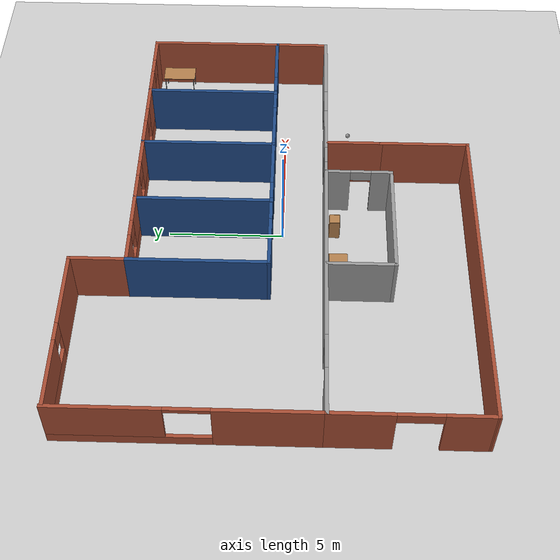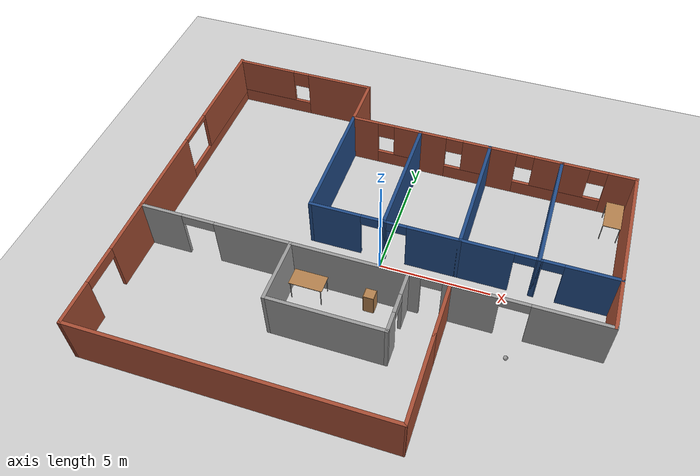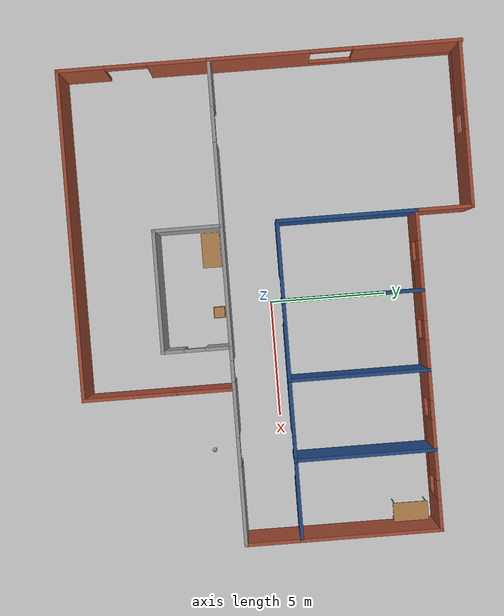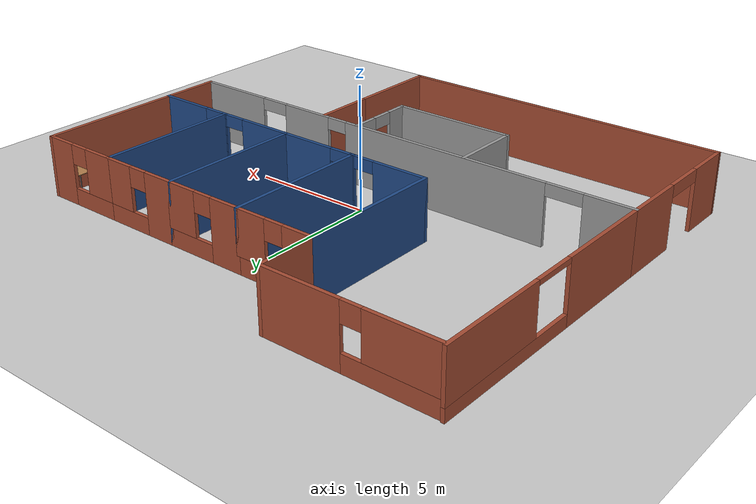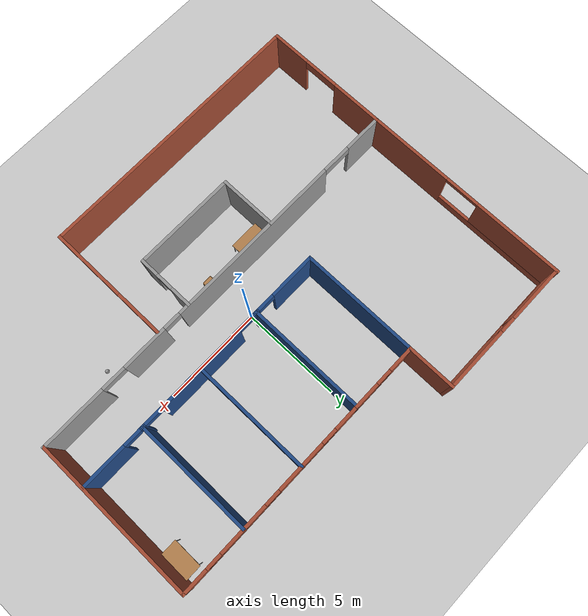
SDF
<sdf version="1.7">
 <world name="default">
  <model name="ground_plane">
   <static>1</static>
   <link name="link">
    <collision name="collision">
     <geometry><plane><normal>0 0 1</normal><size>100 100</size></plane></geometry>
     <surface>
      <contact><collide_bitmask>65535</collide_bitmask></contact>
      <friction><ode><mu>100</mu><mu2>50</mu2></ode></friction>
     </surface>
    </collision>
    <visual name="visual">
     <cast_shadows>0</cast_shadows>
     <geometry><plane><normal>0 0 1</normal><size>100 100</size></plane></geometry>
     <material>
      <script><uri>file://media/materials/scripts/gazebo.material</uri><name>Gazebo/Grey</name></script>
     </material>
    </visual>
   </link>
  </model>
  <model name="Building">
   <pose>-0.15134 0.280793 0 0 -0 0</pose>
   <link name="Wall_10">
    <pose>8.50013 0.225124 0 0 -0 0</pose>
    <visual name="Wall_10_Visual_0">
     <pose>-1.64755 0 1.25 0 -0 0</pose>
     <geometry><box><size>0.204911 0.15 2.5</size></box></geometry>
     <material>
      <script><uri>file://media/materials/scripts/gazebo.material</uri><name>Gazebo/Grey</name></script>
      <ambient>0.12549 0.290196 0.529412 1</ambient>
     </material>
     <meta><layer>0</layer></meta>
    </visual>
    <collision name="Wall_10_Collision_0">
     <geometry><box><size>0.204911 0.15 2.5</size></box></geometry>
     <pose>-1.64755 0 1.25 0 -0 0</pose>
    </collision>
    <visual name="Wall_10_Visual_1">
     <pose>0.552455 0 1.25 0 -0 0</pose>
     <geometry><box><size>2.39509 0.15 2.5</size></box></geometry>
     <material>
      <script><uri>file://media/materials/scripts/gazebo.material</uri><name>Gazebo/Grey</name></script>
      <ambient>0.12549 0.290196 0.529412 1</ambient>
     </material>
     <meta><layer>0</layer></meta>
    </visual>
    <collision name="Wall_10_Collision_1">
     <geometry><box><size>2.39509 0.15 2.5</size></box></geometry>
     <pose>0.552455 0 1.25 0 -0 0</pose>
    </collision>
    <visual name="Wall_10_Visual_2">
     <pose>-1.09509 0 2.25 0 -0 0</pose>
     <geometry><box><size>0.9 0.15 0.5</size></box></geometry>
     <material>
      <script><uri>file://media/materials/scripts/gazebo.material</uri><name>Gazebo/Grey</name></script>
      <ambient>0.12549 0.290196 0.529412 1</ambient>
     </material>
     <meta><layer>0</layer></meta>
    </visual>
    <collision name="Wall_10_Collision_2">
     <geometry><box><size>0.9 0.15 0.5</size></box></geometry>
     <pose>-1.09509 0 2.25 0 -0 0</pose>
    </collision>
   </link>
   <link name="Wall_12">
    <pose>5.15013 0.225124 0 0 -0 3.14159</pose>
    <visual name="Wall_12_Visual_0">
     <pose>-1.64576 0 1.25 0 -0 0</pose>
     <geometry><box><size>0.208483 0.15 2.5</size></box></geometry>
     <material>
      <script><uri>file://media/materials/scripts/gazebo.material</uri><name>Gazebo/Grey</name></script>
      <ambient>0.12549 0.290196 0.529412 1</ambient>
     </material>
     <meta><layer>0</layer></meta>
    </visual>
    <collision name="Wall_12_Collision_0">
     <geometry><box><size>0.208483 0.15 2.5</size></box></geometry>
     <pose>-1.64576 0 1.25 0 -0 0</pose>
    </collision>
    <visual name="Wall_12_Visual_1">
     <pose>0.554241 0 1.25 0 -0 0</pose>
     <geometry><box><size>2.39152 0.15 2.5</size></box></geometry>
     <material>
      <script><uri>file://media/materials/scripts/gazebo.material</uri><name>Gazebo/Grey</name></script>
      <ambient>0.12549 0.290196 0.529412 1</ambient>
     </material>
     <meta><layer>0</layer></meta>
    </visual>
    <collision name="Wall_12_Collision_1">
     <geometry><box><size>2.39152 0.15 2.5</size></box></geometry>
     <pose>0.554241 0 1.25 0 -0 0</pose>
    </collision>
    <visual name="Wall_12_Visual_2">
     <pose>-1.09152 0 2.25 0 -0 0</pose>
     <geometry><box><size>0.9 0.15 0.5</size></box></geometry>
     <material>
      <script><uri>file://media/materials/scripts/gazebo.material</uri><name>Gazebo/Grey</name></script>
      <ambient>0.12549 0.290196 0.529412 1</ambient>
     </material>
     <meta><layer>0</layer></meta>
    </visual>
    <collision name="Wall_12_Collision_2">
     <geometry><box><size>0.9 0.15 0.5</size></box></geometry>
     <pose>-1.09152 0 2.25 0 -0 0</pose>
    </collision>
   </link>
   <link name="Wall_13">
    <collision name="Wall_13_Collision">
     <geometry><box><size>6 0.15 2.5</size></box></geometry>
     <pose>0 0 1.25 0 -0 0</pose>
    </collision>
    <visual name="Wall_13_Visual">
     <pose>0 0 1.25 0 -0 0</pose>
     <geometry><box><size>6 0.15 2.5</size></box></geometry>
     <material>
      <script><uri>file://media/materials/scripts/gazebo.material</uri><name>Gazebo/Grey</name></script>
      <ambient>0.12549 0.290196 0.529412 1</ambient>
     </material>
     <meta><layer>0</layer></meta>
    </visual>
    <pose>3.47512 3.15012 0 0 -0 1.5708</pose>
   </link>
   <link name="Wall_14">
    <pose>5.15013 6.07512 0 0 -0 0</pose>
    <visual name="Wall_14_Visual_0">
     <pose>-1.06914 0 1.25 0 -0 0</pose>
     <geometry><box><size>1.36172 0.15 2.5</size></box></geometry>
     <material>
      <script><uri>file://media/materials/scripts/gazebo.material</uri><name>Gazebo/Bricks</name></script>
      <ambient>0.333333 0.341176 0.32549 1</ambient>
     </material>
     <meta><layer>0</layer></meta>
    </visual>
    <collision name="Wall_14_Collision_0">
     <geometry><box><size>1.36172 0.15 2.5</size></box></geometry>
     <pose>-1.06914 0 1.25 0 -0 0</pose>
    </collision>
    <visual name="Wall_14_Visual_1">
     <pose>0.68086 0 0.35 0 -0 0</pose>
     <geometry><box><size>2.13828 0.15 0.7</size></box></geometry>
     <material>
      <script><uri>file://media/materials/scripts/gazebo.material</uri><name>Gazebo/Bricks</name></script>
      <ambient>0.333333 0.341176 0.32549 1</ambient>
     </material>
     <meta><layer>0</layer></meta>
    </visual>
    <collision name="Wall_14_Collision_1">
     <geometry><box><size>2.13828 0.15 0.7</size></box></geometry>
     <pose>0.68086 0 0.35 0 -0 0</pose>
    </collision>
    <visual name="Wall_14_Visual_2">
     <pose>1.08086 0 1.6 0 -0 0</pose>
     <geometry><box><size>1.33828 0.15 1.8</size></box></geometry>
     <material>
      <script><uri>file://media/materials/scripts/gazebo.material</uri><name>Gazebo/Bricks</name></script>
      <ambient>0.333333 0.341176 0.32549 1</ambient>
     </material>
     <meta><layer>0</layer></meta>
    </visual>
    <collision name="Wall_14_Collision_2">
     <geometry><box><size>1.33828 0.15 1.8</size></box></geometry>
     <pose>1.08086 0 1.6 0 -0 0</pose>
    </collision>
    <visual name="Wall_14_Visual_3">
     <pose>0.01172 0 2.1 0 -0 0</pose>
     <geometry><box><size>0.8 0.15 0.8</size></box></geometry>
     <material>
      <script><uri>file://media/materials/scripts/gazebo.material</uri><name>Gazebo/Bricks</name></script>
      <ambient>0.333333 0.341176 0.32549 1</ambient>
     </material>
     <meta><layer>0</layer></meta>
    </visual>
    <collision name="Wall_14_Collision_3">
     <geometry><box><size>0.8 0.15 0.8</size></box></geometry>
     <pose>0.01172 0 2.1 0 -0 0</pose>
    </collision>
   </link>
   <link name="Wall_16">
    <pose>1.80012 0.225124 0 0 -0 3.14159</pose>
    <visual name="Wall_16_Visual_0">
     <pose>-0.551484 0 1.25 0 -0 0</pose>
     <geometry><box><size>2.39703 0.15 2.5</size></box></geometry>
     <material>
      <script><uri>file://media/materials/scripts/gazebo.material</uri><name>Gazebo/Grey</name></script>
      <ambient>0.12549 0.290196 0.529412 1</ambient>
     </material>
     <meta><layer>0</layer></meta>
    </visual>
    <collision name="Wall_16_Collision_0">
     <geometry><box><size>2.39703 0.15 2.5</size></box></geometry>
     <pose>-0.551484 0 1.25 0 -0 0</pose>
    </collision>
    <visual name="Wall_16_Visual_1">
     <pose>1.64852 0 1.25 0 -0 0</pose>
     <geometry><box><size>0.202968 0.15 2.5</size></box></geometry>
     <material>
      <script><uri>file://media/materials/scripts/gazebo.material</uri><name>Gazebo/Grey</name></script>
      <ambient>0.12549 0.290196 0.529412 1</ambient>
     </material>
     <meta><layer>0</layer></meta>
    </visual>
    <collision name="Wall_16_Collision_1">
     <geometry><box><size>0.202968 0.15 2.5</size></box></geometry>
     <pose>1.64852 0 1.25 0 -0 0</pose>
    </collision>
    <visual name="Wall_16_Visual_2">
     <pose>1.09703 0 2.25 0 -0 0</pose>
     <geometry><box><size>0.9 0.15 0.5</size></box></geometry>
     <material>
      <script><uri>file://media/materials/scripts/gazebo.material</uri><name>Gazebo/Grey</name></script>
      <ambient>0.12549 0.290196 0.529412 1</ambient>
     </material>
     <meta><layer>0</layer></meta>
    </visual>
    <collision name="Wall_16_Collision_2">
     <geometry><box><size>0.9 0.15 0.5</size></box></geometry>
     <pose>1.09703 0 2.25 0 -0 0</pose>
    </collision>
   </link>
   <link name="Wall_17">
    <collision name="Wall_17_Collision">
     <geometry><box><size>6 0.15 2.5</size></box></geometry>
     <pose>0 0 1.25 0 -0 0</pose>
    </collision>
    <visual name="Wall_17_Visual">
     <pose>0 0 1.25 0 -0 0</pose>
     <geometry><box><size>6 0.15 2.5</size></box></geometry>
     <material>
      <script><uri>file://media/materials/scripts/gazebo.material</uri><name>Gazebo/Grey</name></script>
      <ambient>0.12549 0.290196 0.529412 1</ambient>
     </material>
     <meta><layer>0</layer></meta>
    </visual>
    <pose>0.125125 3.15012 0 0 -0 1.5708</pose>
   </link>
   <link name="Wall_18">
    <pose>1.80012 6.07512 0 0 -0 0</pose>
    <visual name="Wall_18_Visual_0">
     <pose>-1.07428 0 1.25 0 -0 0</pose>
     <geometry><box><size>1.35145 0.15 2.5</size></box></geometry>
     <material>
      <script><uri>file://media/materials/scripts/gazebo.material</uri><name>Gazebo/Bricks</name></script>
      <ambient>0.333333 0.341176 0.32549 1</ambient>
     </material>
     <meta><layer>0</layer></meta>
    </visual>
    <collision name="Wall_18_Collision_0">
     <geometry><box><size>1.35145 0.15 2.5</size></box></geometry>
     <pose>-1.07428 0 1.25 0 -0 0</pose>
    </collision>
    <visual name="Wall_18_Visual_1">
     <pose>0.675722 0 0.35 0 -0 0</pose>
     <geometry><box><size>2.14855 0.15 0.7</size></box></geometry>
     <material>
      <script><uri>file://media/materials/scripts/gazebo.material</uri><name>Gazebo/Bricks</name></script>
      <ambient>0.333333 0.341176 0.32549 1</ambient>
     </material>
     <meta><layer>0</layer></meta>
    </visual>
    <collision name="Wall_18_Collision_1">
     <geometry><box><size>2.14855 0.15 0.7</size></box></geometry>
     <pose>0.675722 0 0.35 0 -0 0</pose>
    </collision>
    <visual name="Wall_18_Visual_2">
     <pose>1.07572 0 1.6 0 -0 0</pose>
     <geometry><box><size>1.34855 0.15 1.8</size></box></geometry>
     <material>
      <script><uri>file://media/materials/scripts/gazebo.material</uri><name>Gazebo/Bricks</name></script>
      <ambient>0.333333 0.341176 0.32549 1</ambient>
     </material>
     <meta><layer>0</layer></meta>
    </visual>
    <collision name="Wall_18_Collision_2">
     <geometry><box><size>1.34855 0.15 1.8</size></box></geometry>
     <pose>1.07572 0 1.6 0 -0 0</pose>
    </collision>
    <visual name="Wall_18_Visual_3">
     <pose>0.001445 0 2.1 0 -0 0</pose>
     <geometry><box><size>0.8 0.15 0.8</size></box></geometry>
     <material>
      <script><uri>file://media/materials/scripts/gazebo.material</uri><name>Gazebo/Bricks</name></script>
      <ambient>0.333333 0.341176 0.32549 1</ambient>
     </material>
     <meta><layer>0</layer></meta>
    </visual>
    <collision name="Wall_18_Collision_3">
     <geometry><box><size>0.8 0.15 0.8</size></box></geometry>
     <pose>0.001445 0 2.1 0 -0 0</pose>
    </collision>
   </link>
   <link name="Wall_20">
    <pose>-1.54987 0.225124 0 0 -0 3.14159</pose>
    <visual name="Wall_20_Visual_0">
     <pose>-1.64976 0 1.25 0 -0 0</pose>
     <geometry><box><size>0.200481 0.15 2.5</size></box></geometry>
     <material>
      <script><uri>file://media/materials/scripts/gazebo.material</uri><name>Gazebo/Grey</name></script>
      <ambient>0.12549 0.290196 0.529412 1</ambient>
     </material>
     <meta><layer>0</layer></meta>
    </visual>
    <collision name="Wall_20_Collision_0">
     <geometry><box><size>0.200481 0.15 2.5</size></box></geometry>
     <pose>-1.64976 0 1.25 0 -0 0</pose>
    </collision>
    <visual name="Wall_20_Visual_1">
     <pose>0.550241 0 1.25 0 -0 0</pose>
     <geometry><box><size>2.39952 0.15 2.5</size></box></geometry>
     <material>
      <script><uri>file://media/materials/scripts/gazebo.material</uri><name>Gazebo/Grey</name></script>
      <ambient>0.12549 0.290196 0.529412 1</ambient>
     </material>
     <meta><layer>0</layer></meta>
    </visual>
    <collision name="Wall_20_Collision_1">
     <geometry><box><size>2.39952 0.15 2.5</size></box></geometry>
     <pose>0.550241 0 1.25 0 -0 0</pose>
    </collision>
    <visual name="Wall_20_Visual_2">
     <pose>-1.09952 0 2.25 0 -0 0</pose>
     <geometry><box><size>0.9 0.15 0.5</size></box></geometry>
     <material>
      <script><uri>file://media/materials/scripts/gazebo.material</uri><name>Gazebo/Grey</name></script>
      <ambient>0.12549 0.290196 0.529412 1</ambient>
     </material>
     <meta><layer>0</layer></meta>
    </visual>
    <collision name="Wall_20_Collision_2">
     <geometry><box><size>0.9 0.15 0.5</size></box></geometry>
     <pose>-1.09952 0 2.25 0 -0 0</pose>
    </collision>
   </link>
   <link name="Wall_21">
    <collision name="Wall_21_Collision">
     <geometry><box><size>6 0.15 2.5</size></box></geometry>
     <pose>0 0 1.25 0 -0 0</pose>
    </collision>
    <visual name="Wall_21_Visual">
     <pose>0 0 1.25 0 -0 0</pose>
     <geometry><box><size>6 0.15 2.5</size></box></geometry>
     <material>
      <script><uri>file://media/materials/scripts/gazebo.material</uri><name>Gazebo/Grey</name></script>
      <ambient>0.12549 0.290196 0.529412 1</ambient>
     </material>
     <meta><layer>0</layer></meta>
    </visual>
    <pose>-3.22488 3.15012 0 0 -0 1.5708</pose>
   </link>
   <link name="Wall_22">
    <pose>-1.54987 6.07512 0 0 -0 0</pose>
    <visual name="Wall_22_Visual_0">
     <pose>-1.07723 0 1.25 0 -0 0</pose>
     <geometry><box><size>1.34554 0.15 2.5</size></box></geometry>
     <material>
      <script><uri>file://media/materials/scripts/gazebo.material</uri><name>Gazebo/Bricks</name></script>
      <ambient>0.333333 0.341176 0.32549 1</ambient>
     </material>
     <meta><layer>0</layer></meta>
    </visual>
    <collision name="Wall_22_Collision_0">
     <geometry><box><size>1.34554 0.15 2.5</size></box></geometry>
     <pose>-1.07723 0 1.25 0 -0 0</pose>
    </collision>
    <visual name="Wall_22_Visual_1">
     <pose>0.672768 0 0.35 0 -0 0</pose>
     <geometry><box><size>2.15446 0.15 0.7</size></box></geometry>
     <material>
      <script><uri>file://media/materials/scripts/gazebo.material</uri><name>Gazebo/Bricks</name></script>
      <ambient>0.333333 0.341176 0.32549 1</ambient>
     </material>
     <meta><layer>0</layer></meta>
    </visual>
    <collision name="Wall_22_Collision_1">
     <geometry><box><size>2.15446 0.15 0.7</size></box></geometry>
     <pose>0.672768 0 0.35 0 -0 0</pose>
    </collision>
    <visual name="Wall_22_Visual_2">
     <pose>1.07277 0 1.6 0 -0 0</pose>
     <geometry><box><size>1.35446 0.15 1.8</size></box></geometry>
     <material>
      <script><uri>file://media/materials/scripts/gazebo.material</uri><name>Gazebo/Bricks</name></script>
      <ambient>0.333333 0.341176 0.32549 1</ambient>
     </material>
     <meta><layer>0</layer></meta>
    </visual>
    <collision name="Wall_22_Collision_2">
     <geometry><box><size>1.35446 0.15 1.8</size></box></geometry>
     <pose>1.07277 0 1.6 0 -0 0</pose>
    </collision>
    <visual name="Wall_22_Visual_3">
     <pose>-0.004464 0 2.1 0 -0 0</pose>
     <geometry><box><size>0.8 0.15 0.8</size></box></geometry>
     <material>
      <script><uri>file://media/materials/scripts/gazebo.material</uri><name>Gazebo/Bricks</name></script>
      <ambient>0.333333 0.341176 0.32549 1</ambient>
     </material>
     <meta><layer>0</layer></meta>
    </visual>
    <collision name="Wall_22_Collision_3">
     <geometry><box><size>0.8 0.15 0.8</size></box></geometry>
     <pose>-0.004464 0 2.1 0 -0 0</pose>
    </collision>
   </link>
   <link name="Wall_24">
    <collision name="Wall_24_Collision">
     <geometry><box><size>2.5 0.15 2.5</size></box></geometry>
     <pose>0 0 1.25 0 -0 0</pose>
    </collision>
    <visual name="Wall_24_Visual">
     <pose>0 0 1.25 0 -0 0</pose>
     <geometry><box><size>2.5 0.15 2.5</size></box></geometry>
     <material>
      <script><uri>file://media/materials/scripts/gazebo.material</uri><name>Gazebo/Bricks</name></script>
      <ambient>1 1 1 1</ambient>
     </material>
     <meta><layer>0</layer></meta>
    </visual>
    <pose>-3.22488 7.25012 0 0 -0 1.5708</pose>
   </link>
   <link name="Wall_25">
    <pose>-6.64987 8.42512 0 0 -0 3.14159</pose>
    <visual name="Wall_25_Visual_0">
     <pose>-1.84714 0 1.25 0 -0 0</pose>
     <geometry><box><size>3.30572 0.15 2.5</size></box></geometry>
     <material>
      <script><uri>file://media/materials/scripts/gazebo.material</uri><name>Gazebo/Bricks</name></script>
      <ambient>0.333333 0.341176 0.32549 1</ambient>
     </material>
     <meta><layer>0</layer></meta>
    </visual>
    <collision name="Wall_25_Collision_0">
     <geometry><box><size>3.30572 0.15 2.5</size></box></geometry>
     <pose>-1.84714 0 1.25 0 -0 0</pose>
    </collision>
    <visual name="Wall_25_Visual_1">
     <pose>1.65286 0 0.35 0 -0 0</pose>
     <geometry><box><size>3.69428 0.15 0.7</size></box></geometry>
     <material>
      <script><uri>file://media/materials/scripts/gazebo.material</uri><name>Gazebo/Bricks</name></script>
      <ambient>0.333333 0.341176 0.32549 1</ambient>
     </material>
     <meta><layer>0</layer></meta>
    </visual>
    <collision name="Wall_25_Collision_1">
     <geometry><box><size>3.69428 0.15 0.7</size></box></geometry>
     <pose>1.65286 0 0.35 0 -0 0</pose>
    </collision>
    <visual name="Wall_25_Visual_2">
     <pose>2.05286 0 1.6 0 -0 0</pose>
     <geometry><box><size>2.89428 0.15 1.8</size></box></geometry>
     <material>
      <script><uri>file://media/materials/scripts/gazebo.material</uri><name>Gazebo/Bricks</name></script>
      <ambient>0.333333 0.341176 0.32549 1</ambient>
     </material>
     <meta><layer>0</layer></meta>
    </visual>
    <collision name="Wall_25_Collision_2">
     <geometry><box><size>2.89428 0.15 1.8</size></box></geometry>
     <pose>2.05286 0 1.6 0 -0 0</pose>
    </collision>
    <visual name="Wall_25_Visual_3">
     <pose>0.205716 0 2.1 0 -0 0</pose>
     <geometry><box><size>0.8 0.15 0.8</size></box></geometry>
     <material>
      <script><uri>file://media/materials/scripts/gazebo.material</uri><name>Gazebo/Bricks</name></script>
      <ambient>0.333333 0.341176 0.32549 1</ambient>
     </material>
     <meta><layer>0</layer></meta>
    </visual>
    <collision name="Wall_25_Collision_3">
     <geometry><box><size>0.8 0.15 0.8</size></box></geometry>
     <pose>0.205716 0 2.1 0 -0 0</pose>
    </collision>
   </link>
   <link name="Wall_40">
    <pose>0.000125 -2.12488 0 0 -0 3.14159</pose>
    <visual name="Wall_40_Visual_0">
     <pose>-8.57984 0 1.25 0 -0 0</pose>
     <geometry><box><size>3.34032 0.15 2.5</size></box></geometry>
     <material>
      <script><uri>file://media/materials/scripts/gazebo.material</uri><name>Gazebo/Grey</name></script>
      <ambient>0.533333 0.541176 0.521569 1</ambient>
     </material>
     <meta><layer>0</layer></meta>
    </visual>
    <collision name="Wall_40_Collision_0">
     <geometry><box><size>3.34032 0.15 2.5</size></box></geometry>
     <pose>-8.57984 0 1.25 0 -0 0</pose>
    </collision>
    <visual name="Wall_40_Visual_1">
     <pose>-4.49832 0 1.25 0 -0 0</pose>
     <geometry><box><size>2.32272 0.15 2.5</size></box></geometry>
     <material>
      <script><uri>file://media/materials/scripts/gazebo.material</uri><name>Gazebo/Grey</name></script>
      <ambient>0.533333 0.541176 0.521569 1</ambient>
     </material>
     <meta><layer>0</layer></meta>
    </visual>
    <collision name="Wall_40_Collision_1">
     <geometry><box><size>2.32272 0.15 2.5</size></box></geometry>
     <pose>-4.49832 0 1.25 0 -0 0</pose>
    </collision>
    <visual name="Wall_40_Visual_2">
     <pose>2.13723 0 1.25 0 -0 0</pose>
     <geometry><box><size>9.14837 0.15 2.5</size></box></geometry>
     <material>
      <script><uri>file://media/materials/scripts/gazebo.material</uri><name>Gazebo/Grey</name></script>
      <ambient>0.533333 0.541176 0.521569 1</ambient>
     </material>
     <meta><layer>0</layer></meta>
    </visual>
    <collision name="Wall_40_Collision_2">
     <geometry><box><size>9.14837 0.15 2.5</size></box></geometry>
     <pose>2.13723 0 1.25 0 -0 0</pose>
    </collision>
    <visual name="Wall_40_Visual_3">
     <pose>9.23071 0 1.25 0 -0 0</pose>
     <geometry><box><size>2.03859 0.15 2.5</size></box></geometry>
     <material>
      <script><uri>file://media/materials/scripts/gazebo.material</uri><name>Gazebo/Grey</name></script>
      <ambient>0.533333 0.541176 0.521569 1</ambient>
     </material>
     <meta><layer>0</layer></meta>
    </visual>
    <collision name="Wall_40_Collision_3">
     <geometry><box><size>2.03859 0.15 2.5</size></box></geometry>
     <pose>9.23071 0 1.25 0 -0 0</pose>
    </collision>
    <visual name="Wall_40_Visual_4">
     <pose>-6.28468 0 2.25 0 -0 0</pose>
     <geometry><box><size>1.25 0.15 0.5</size></box></geometry>
     <material>
      <script><uri>file://media/materials/scripts/gazebo.material</uri><name>Gazebo/Grey</name></script>
      <ambient>0.533333 0.541176 0.521569 1</ambient>
     </material>
     <meta><layer>0</layer></meta>
    </visual>
    <collision name="Wall_40_Collision_4">
     <geometry><box><size>1.25 0.15 0.5</size></box></geometry>
     <pose>-6.28468 0 2.25 0 -0 0</pose>
    </collision>
    <visual name="Wall_40_Visual_5">
     <pose>-2.88696 0 2.25 0 -0 0</pose>
     <geometry><box><size>0.9 0.15 0.5</size></box></geometry>
     <material>
      <script><uri>file://media/materials/scripts/gazebo.material</uri><name>Gazebo/Grey</name></script>
      <ambient>0.533333 0.541176 0.521569 1</ambient>
     </material>
     <meta><layer>0</layer></meta>
    </visual>
    <collision name="Wall_40_Collision_5">
     <geometry><box><size>0.9 0.15 0.5</size></box></geometry>
     <pose>-2.88696 0 2.25 0 -0 0</pose>
    </collision>
    <visual name="Wall_40_Visual_6">
     <pose>7.46141 0 2.25 0 -0 0</pose>
     <geometry><box><size>1.5 0.15 0.5</size></box></geometry>
     <material>
      <script><uri>file://media/materials/scripts/gazebo.material</uri><name>Gazebo/Grey</name></script>
      <ambient>0.533333 0.541176 0.521569 1</ambient>
     </material>
     <meta><layer>0</layer></meta>
    </visual>
    <collision name="Wall_40_Collision_6">
     <geometry><box><size>1.5 0.15 0.5</size></box></geometry>
     <pose>7.46141 0 2.25 0 -0 0</pose>
    </collision>
   </link>
   <link name="Wall_41">
    <pose>-10.1749 3.17512 0 0 -0 1.5708</pose>
    <visual name="Wall_41_Visual_0">
     <pose>-3.19655 0 1.25 0 -0 0</pose>
     <geometry><box><size>4.3569 0.15 2.5</size></box></geometry>
     <material>
      <script><uri>file://media/materials/scripts/gazebo.material</uri><name>Gazebo/Bricks</name></script>
      <ambient>0.333333 0.341176 0.32549 1</ambient>
     </material>
     <meta><layer>0</layer></meta>
    </visual>
    <collision name="Wall_41_Collision_0">
     <geometry><box><size>4.3569 0.15 2.5</size></box></geometry>
     <pose>-3.19655 0 1.25 0 -0 0</pose>
    </collision>
    <visual name="Wall_41_Visual_1">
     <pose>2.17845 0 0.25 0 -0 0</pose>
     <geometry><box><size>6.3931 0.15 0.5</size></box></geometry>
     <material>
      <script><uri>file://media/materials/scripts/gazebo.material</uri><name>Gazebo/Bricks</name></script>
      <ambient>0.333333 0.341176 0.32549 1</ambient>
     </material>
     <meta><layer>0</layer></meta>
    </visual>
    <collision name="Wall_41_Collision_1">
     <geometry><box><size>6.3931 0.15 0.5</size></box></geometry>
     <pose>2.17845 0 0.25 0 -0 0</pose>
    </collision>
    <visual name="Wall_41_Visual_2">
     <pose>3.07845 0 1.5 0 -0 0</pose>
     <geometry><box><size>4.5931 0.15 2</size></box></geometry>
     <material>
      <script><uri>file://media/materials/scripts/gazebo.material</uri><name>Gazebo/Bricks</name></script>
      <ambient>0.333333 0.341176 0.32549 1</ambient>
     </material>
     <meta><layer>0</layer></meta>
    </visual>
    <collision name="Wall_41_Collision_2">
     <geometry><box><size>4.5931 0.15 2</size></box></geometry>
     <pose>3.07845 0 1.5 0 -0 0</pose>
    </collision>
    <visual name="Wall_41_Visual_3">
     <pose>-0.118096 0 2.4 0 -0 0</pose>
     <geometry><box><size>1.8 0.15 0.2</size></box></geometry>
     <material>
      <script><uri>file://media/materials/scripts/gazebo.material</uri><name>Gazebo/Bricks</name></script>
      <ambient>0.333333 0.341176 0.32549 1</ambient>
     </material>
     <meta><layer>0</layer></meta>
    </visual>
    <collision name="Wall_41_Collision_3">
     <geometry><box><size>1.8 0.15 0.2</size></box></geometry>
     <pose>-0.118096 0 2.4 0 -0 0</pose>
    </collision>
   </link>
   <link name="Wall_43">
    <collision name="Wall_43_Collision">
     <geometry><box><size>2.5 0.15 2.5</size></box></geometry>
     <pose>0 0 1.25 0 -0 0</pose>
    </collision>
    <visual name="Wall_43_Visual">
     <pose>0 0 1.25 0 -0 0</pose>
     <geometry><box><size>2.5 0.15 2.5</size></box></geometry>
     <material>
      <script><uri>file://media/materials/scripts/gazebo.material</uri><name>Gazebo/Bricks</name></script>
      <ambient>1 1 1 1</ambient>
     </material>
     <meta><layer>0</layer></meta>
    </visual>
    <pose>3.6418 -3.40395 0 0 -0 -1.5708</pose>
   </link>
   <link name="Wall_44">
    <collision name="Wall_44_Collision">
     <geometry><box><size>4 0.15 2.5</size></box></geometry>
     <pose>0 0 1.25 0 -0 0</pose>
    </collision>
    <visual name="Wall_44_Visual">
     <pose>0 0 1.25 0 -0 0</pose>
     <geometry><box><size>4 0.15 2.5</size></box></geometry>
     <material>
      <script><uri>file://media/materials/scripts/gazebo.material</uri><name>Gazebo/Bricks</name></script>
      <ambient>1 1 1 1</ambient>
     </material>
     <meta><layer>0</layer></meta>
    </visual>
    <pose>3.6418 -6.50395 0 0 -0 -1.5708</pose>
   </link>
   <link name="Wall_46">
    <pose>1.89213 -3.55088 0 0 -0 -1.5708</pose>
    <visual name="Wall_46_Visual_0">
     <pose>-0.932706 0 1.25 0 -0 0</pose>
     <geometry><box><size>1.13459 0.15 2.5</size></box></geometry>
     <material>
      <script><uri>file://media/materials/scripts/gazebo.material</uri><name>Gazebo/Grey</name></script>
      <ambient>0.533333 0.541176 0.521569 1</ambient>
     </material>
     <meta><layer>0</layer></meta>
    </visual>
    <collision name="Wall_46_Collision_0">
     <geometry><box><size>1.13459 0.15 2.5</size></box></geometry>
     <pose>-0.932706 0 1.25 0 -0 0</pose>
    </collision>
    <visual name="Wall_46_Visual_1">
     <pose>1.01729 0 1.25 0 -0 0</pose>
     <geometry><box><size>0.965411 0.15 2.5</size></box></geometry>
     <material>
      <script><uri>file://media/materials/scripts/gazebo.material</uri><name>Gazebo/Grey</name></script>
      <ambient>0.533333 0.541176 0.521569 1</ambient>
     </material>
     <meta><layer>0</layer></meta>
    </visual>
    <collision name="Wall_46_Collision_1">
     <geometry><box><size>0.965411 0.15 2.5</size></box></geometry>
     <pose>1.01729 0 1.25 0 -0 0</pose>
    </collision>
    <visual name="Wall_46_Visual_2">
     <pose>0.084589 0 2.25 0 -0 0</pose>
     <geometry><box><size>0.9 0.15 0.5</size></box></geometry>
     <material>
      <script><uri>file://media/materials/scripts/gazebo.material</uri><name>Gazebo/Grey</name></script>
      <ambient>0.533333 0.541176 0.521569 1</ambient>
     </material>
     <meta><layer>0</layer></meta>
    </visual>
    <collision name="Wall_46_Collision_2">
     <geometry><box><size>0.9 0.15 0.5</size></box></geometry>
     <pose>0.084589 0 2.25 0 -0 0</pose>
    </collision>
   </link>
   <link name="Wall_47">
    <collision name="Wall_47_Collision">
     <geometry><box><size>5.25 0.15 2.5</size></box></geometry>
     <pose>0 0 1.25 0 -0 0</pose>
    </collision>
    <visual name="Wall_47_Visual">
     <pose>0 0 1.25 0 -0 0</pose>
     <geometry><box><size>5.25 0.15 2.5</size></box></geometry>
     <material>
      <script><uri>file://media/materials/scripts/gazebo.material</uri><name>Gazebo/Grey</name></script>
      <ambient>0.533333 0.541176 0.521569 1</ambient>
     </material>
     <meta><layer>0</layer></meta>
    </visual>
    <pose>-0.657821 -4.97595 0 0 -0 -3.14156</pose>
   </link>
   <link name="Wall_48">
    <collision name="Wall_48_Collision">
     <geometry><box><size>3 0.15 2.5</size></box></geometry>
     <pose>0 0 1.25 0 -0 0</pose>
    </collision>
    <visual name="Wall_48_Visual">
     <pose>0 0 1.25 0 -0 0</pose>
     <geometry><box><size>3 0.15 2.5</size></box></geometry>
     <material>
      <script><uri>file://media/materials/scripts/gazebo.material</uri><name>Gazebo/Grey</name></script>
      <ambient>0.533333 0.541176 0.521569 1</ambient>
     </material>
     <meta><layer>0</layer></meta>
    </visual>
    <pose>-3.20777 -3.55104 0 0 -0 1.5708</pose>
   </link>
   <link name="Wall_5">
    <collision name="Wall_5_Collision">
     <geometry><box><size>2.5 0.15 2.5</size></box></geometry>
     <pose>0 0 1.25 0 -0 0</pose>
    </collision>
    <visual name="Wall_5_Visual">
     <pose>0 0 1.25 0 -0 0</pose>
     <geometry><box><size>2.5 0.15 2.5</size></box></geometry>
     <material>
      <script><uri>file://media/materials/scripts/gazebo.material</uri><name>Gazebo/Bricks</name></script>
      <ambient>0.333333 0.341176 0.32549 1</ambient>
     </material>
     <meta><layer>0</layer></meta>
    </visual>
    <pose>10.1751 -0.949876 0 0 -0 1.5708</pose>
   </link>
   <link name="Wall_52">
    <pose>-10.1749 -5.29988 0 0 -0 -1.5708</pose>
    <visual name="Wall_52_Visual_0">
     <pose>-1.92266 0 1.25 0 -0 0</pose>
     <geometry><box><size>2.65469 0.15 2.5</size></box></geometry>
     <material>
      <script><uri>file://media/materials/scripts/gazebo.material</uri><name>Gazebo/Bricks</name></script>
      <ambient>1 1 1 1</ambient>
     </material>
     <meta><layer>0</layer></meta>
    </visual>
    <collision name="Wall_52_Collision_0">
     <geometry><box><size>2.65469 0.15 2.5</size></box></geometry>
     <pose>-1.92266 0 1.25 0 -0 0</pose>
    </collision>
    <visual name="Wall_52_Visual_1">
     <pose>2.22734 0 1.25 0 -0 0</pose>
     <geometry><box><size>2.04531 0.15 2.5</size></box></geometry>
     <material>
      <script><uri>file://media/materials/scripts/gazebo.material</uri><name>Gazebo/Bricks</name></script>
      <ambient>1 1 1 1</ambient>
     </material>
     <meta><layer>0</layer></meta>
    </visual>
    <collision name="Wall_52_Collision_1">
     <geometry><box><size>2.04531 0.15 2.5</size></box></geometry>
     <pose>2.22734 0 1.25 0 -0 0</pose>
    </collision>
    <visual name="Wall_52_Visual_2">
     <pose>0.304685 0 2.25 0 -0 0</pose>
     <geometry><box><size>1.8 0.15 0.5</size></box></geometry>
     <material>
      <script><uri>file://media/materials/scripts/gazebo.material</uri><name>Gazebo/Bricks</name></script>
      <ambient>1 1 1 1</ambient>
     </material>
     <meta><layer>0</layer></meta>
    </visual>
    <collision name="Wall_52_Collision_2">
     <geometry><box><size>1.8 0.15 0.5</size></box></geometry>
     <pose>0.304685 0 2.25 0 -0 0</pose>
    </collision>
   </link>
   <link name="Wall_54">
    <collision name="Wall_54_Collision">
     <geometry><box><size>13.9667 0.15 2.5</size></box></geometry>
     <pose>0 0 1.25 0 -0 0</pose>
    </collision>
    <visual name="Wall_54_Visual">
     <pose>0 0 1.25 0 -0 0</pose>
     <geometry><box><size>13.9667 0.15 2.5</size></box></geometry>
     <material>
      <script><uri>file://media/materials/scripts/gazebo.material</uri><name>Gazebo/Bricks</name></script>
      <ambient>1 1 1 1</ambient>
     </material>
     <meta><layer>0</layer></meta>
    </visual>
    <pose>-3.26654 -8.45191 0 0 -0 -3.13827</pose>
   </link>
   <link name="Wall_6">
    <collision name="Wall_6_Collision">
     <geometry><box><size>6 0.15 2.5</size></box></geometry>
     <pose>0 0 1.25 0 -0 0</pose>
    </collision>
    <visual name="Wall_6_Visual">
     <pose>0 0 1.25 0 -0 0</pose>
     <geometry><box><size>6 0.15 2.5</size></box></geometry>
     <material>
      <script><uri>file://media/materials/scripts/gazebo.material</uri><name>Gazebo/Bricks</name></script>
      <ambient>0.333333 0.341176 0.32549 1</ambient>
     </material>
     <meta><layer>0</layer></meta>
    </visual>
    <pose>10.1751 3.15012 0 0 -0 1.5708</pose>
   </link>
   <link name="Wall_8">
    <pose>8.50013 6.07512 0 0 -0 3.14159</pose>
    <visual name="Wall_8_Visual_0">
     <pose>-1.07616 0 1.25 0 -0 0</pose>
     <geometry><box><size>1.34768 0.15 2.5</size></box></geometry>
     <material>
      <script><uri>file://media/materials/scripts/gazebo.material</uri><name>Gazebo/Bricks</name></script>
      <ambient>0.333333 0.341176 0.32549 1</ambient>
     </material>
     <meta><layer>0</layer></meta>
    </visual>
    <collision name="Wall_8_Collision_0">
     <geometry><box><size>1.34768 0.15 2.5</size></box></geometry>
     <pose>-1.07616 0 1.25 0 -0 0</pose>
    </collision>
    <visual name="Wall_8_Visual_1">
     <pose>0.673839 0 0.35 0 -0 0</pose>
     <geometry><box><size>2.15232 0.15 0.7</size></box></geometry>
     <material>
      <script><uri>file://media/materials/scripts/gazebo.material</uri><name>Gazebo/Bricks</name></script>
      <ambient>0.333333 0.341176 0.32549 1</ambient>
     </material>
     <meta><layer>0</layer></meta>
    </visual>
    <collision name="Wall_8_Collision_1">
     <geometry><box><size>2.15232 0.15 0.7</size></box></geometry>
     <pose>0.673839 0 0.35 0 -0 0</pose>
    </collision>
    <visual name="Wall_8_Visual_2">
     <pose>1.07384 0 1.6 0 -0 0</pose>
     <geometry><box><size>1.35232 0.15 1.8</size></box></geometry>
     <material>
      <script><uri>file://media/materials/scripts/gazebo.material</uri><name>Gazebo/Bricks</name></script>
      <ambient>0.333333 0.341176 0.32549 1</ambient>
     </material>
     <meta><layer>0</layer></meta>
    </visual>
    <collision name="Wall_8_Collision_2">
     <geometry><box><size>1.35232 0.15 1.8</size></box></geometry>
     <pose>1.07384 0 1.6 0 -0 0</pose>
    </collision>
    <visual name="Wall_8_Visual_3">
     <pose>-0.002322 0 2.1 0 -0 0</pose>
     <geometry><box><size>0.8 0.15 0.8</size></box></geometry>
     <material>
      <script><uri>file://media/materials/scripts/gazebo.material</uri><name>Gazebo/Bricks</name></script>
      <ambient>0.333333 0.341176 0.32549 1</ambient>
     </material>
     <meta><layer>0</layer></meta>
    </visual>
    <collision name="Wall_8_Collision_3">
     <geometry><box><size>0.8 0.15 0.8</size></box></geometry>
     <pose>-0.002322 0 2.1 0 -0 0</pose>
    </collision>
   </link>
   <link name="Wall_9">
    <collision name="Wall_9_Collision">
     <geometry><box><size>6 0.15 2.5</size></box></geometry>
     <pose>0 0 1.25 0 -0 0</pose>
    </collision>
    <visual name="Wall_9_Visual">
     <pose>0 0 1.25 0 -0 0</pose>
     <geometry><box><size>6 0.15 2.5</size></box></geometry>
     <material>
      <script><uri>file://media/materials/scripts/gazebo.material</uri><name>Gazebo/Grey</name></script>
      <ambient>0.12549 0.290196 0.529412 1</ambient>
     </material>
     <meta><layer>0</layer></meta>
    </visual>
    <pose>6.82512 3.15012 0 0 -0 -1.5708</pose>
   </link>
   <static>1</static>
  </model>
  <model name="table_0">
   <static>1</static>
   <link name="link">
    <collision name="surface">
     <pose>0 0 1 0 -0 0</pose>
     <geometry><box><size>1.5 0.8 0.03</size></box></geometry>
     <surface><friction><ode><mu>0.6</mu><mu2>0.6</mu2></ode></friction></surface>
    </collision>
    <visual name="visual1">
     <pose>0 0 1 0 -0 0</pose>
     <geometry><box><size>1.5 0.8 0.03</size></box></geometry>
     <material>
      <script><uri>file://media/materials/scripts/gazebo.material</uri><name>Gazebo/Wood</name></script>
     </material>
    </visual>
    <collision name="front_left_leg">
     <pose>0.68 0.38 0.5 0 -0 0</pose>
     <geometry><cylinder><radius>0.02</radius><length>1</length></cylinder></geometry>
    </collision>
    <visual name="front_left_leg">
     <pose>0.68 0.38 0.5 0 -0 0</pose>
     <geometry><cylinder><radius>0.02</radius><length>1</length></cylinder></geometry>
     <material>
      <script><uri>file://media/materials/scripts/gazebo.material</uri><name>Gazebo/Grey</name></script>
     </material>
    </visual>
    <collision name="front_right_leg">
     <pose>0.68 -0.38 0.5 0 -0 0</pose>
     <geometry><cylinder><radius>0.02</radius><length>1</length></cylinder></geometry>
    </collision>
    <visual name="front_right_leg">
     <pose>0.68 -0.38 0.5 0 -0 0</pose>
     <geometry><cylinder><radius>0.02</radius><length>1</length></cylinder></geometry>
     <material>
      <script><uri>file://media/materials/scripts/gazebo.material</uri><name>Gazebo/Grey</name></script>
     </material>
    </visual>
    <collision name="back_right_leg">
     <pose>-0.68 -0.38 0.5 0 -0 0</pose>
     <geometry><cylinder><radius>0.02</radius><length>1</length></cylinder></geometry>
    </collision>
    <visual name="back_right_leg">
     <pose>-0.68 -0.38 0.5 0 -0 0</pose>
     <geometry><cylinder><radius>0.02</radius><length>1</length></cylinder></geometry>
     <material>
      <script><uri>file://media/materials/scripts/gazebo.material</uri><name>Gazebo/Grey</name></script>
     </material>
    </visual>
    <collision name="back_left_leg">
     <pose>-0.68 0.38 0.5 0 -0 0</pose>
     <geometry><cylinder><radius>0.02</radius><length>1</length></cylinder></geometry>
    </collision>
    <visual name="back_left_leg">
     <pose>-0.68 0.38 0.5 0 -0 0</pose>
     <geometry><cylinder><radius>0.02</radius><length>1</length></cylinder></geometry>
     <material>
      <script><uri>file://media/materials/scripts/gazebo.material</uri><name>Gazebo/Grey</name></script>
     </material>
    </visual>
   </link>
   <pose>-2.43902 -2.40672 0 0 -0 0</pose>
  </model>
  <model name="cabinet">
   <static>1</static>
   <link name="cabinet_bottom_plate">
    <inertial>
     <pose>0 0 -1 0 -0 0</pose>
     <inertia><ixx>2.05</ixx><ixy>0</ixy><ixz>0</ixz><iyy>2.05</iyy><iyz>0</iyz><izz>2.05</izz></inertia>
     <mass>25</mass>
    </inertial>
    <collision name="cabinet_bottom_plate_geom">
     <pose>0 0 0.01 0 -0 0</pose>
     <geometry><box><size>0.45 0.45 0.02</size></box></geometry>
    </collision>
    <visual name="cabinet_bottom_plate_geom_visual">
     <pose>0 0 0.01 0 -0 0</pose>
     <geometry><box><size>0.45 0.45 0.02</size></box></geometry>
     <material>
      <script><uri>file://media/materials/scripts/gazebo.material</uri><name>Gazebo/Wood</name></script>
     </material>
    </visual>
    <collision name="cabinet_bottom_plate_geom_cabinet_back_plate">
     <pose>0.235 0 0.51 0 -0 0</pose>
     <geometry><box><size>0.02 0.45 1.02</size></box></geometry>
    </collision>
    <visual name="cabinet_bottom_plate_geom_cabinet_back_plate_visual">
     <pose>0.235 0 0.51 0 -0 0</pose>
     <geometry><box><size>0.02 0.45 1.02</size></box></geometry>
     <material>
      <script><uri>file://media/materials/scripts/gazebo.material</uri><name>Gazebo/Wood</name></script>
     </material>
    </visual>
    <collision name="cabinet_bottom_plate_geom_cabinet_left_plate">
     <pose>0 0.235 0.51 0 -0 0</pose>
     <geometry><box><size>0.45 0.02 1.02</size></box></geometry>
    </collision>
    <visual name="cabinet_bottom_plate_geom_cabinet_left_plate_visual">
     <pose>0 0.235 0.51 0 -0 0</pose>
     <geometry><box><size>0.45 0.02 1.02</size></box></geometry>
     <material>
      <script><uri>file://media/materials/scripts/gazebo.material</uri><name>Gazebo/Wood</name></script>
     </material>
    </visual>
    <collision name="cabinet_bottom_plate_geom_cabinet_middle_plate">
     <pose>0 0 0.51 0 -0 0</pose>
     <geometry><box><size>0.45 0.45 0.02</size></box></geometry>
    </collision>
    <visual name="cabinet_bottom_plate_geom_cabinet_middle_plate_visual">
     <pose>0 0 0.51 0 -0 0</pose>
     <geometry><box><size>0.45 0.45 0.02</size></box></geometry>
     <material>
      <script><uri>file://media/materials/scripts/gazebo.material</uri><name>Gazebo/Wood</name></script>
     </material>
    </visual>
    <collision name="cabinet_bottom_plate_geom_cabinet_right_plate">
     <pose>0 -0.235 0.51 0 -0 0</pose>
     <geometry><box><size>0.45 0.02 1.02</size></box></geometry>
    </collision>
    <visual name="cabinet_bottom_plate_geom_cabinet_right_plate_visual">
     <pose>0 -0.235 0.51 0 -0 0</pose>
     <geometry><box><size>0.45 0.02 1.02</size></box></geometry>
     <material>
      <script><uri>file://media/materials/scripts/gazebo.material</uri><name>Gazebo/Wood</name></script>
     </material>
    </visual>
    <collision name="cabinet_bottom_plate_geom_cabinet_top_plate">
     <pose>0 0 1.01 0 -0 0</pose>
     <geometry><box><size>0.45 0.45 0.02</size></box></geometry>
    </collision>
    <visual name="cabinet_bottom_plate_geom_cabinet_top_plate_visual">
     <pose>0 0 1.01 0 -0 0</pose>
     <geometry><box><size>0.45 0.45 0.02</size></box></geometry>
     <material>
      <script><uri>file://media/materials/scripts/gazebo.material</uri><name>Gazebo/Wood</name></script>
     </material>
    </visual>
   </link>
   <pose>0.259392 -2.26466 0 0 0 -1.57</pose>
  </model>
  <model name="table_2">
   <static>1</static>
   <link name="link">
    <collision name="surface">
     <pose>0 0 1 0 -0 0</pose>
     <geometry><box><size>1.5 0.8 0.03</size></box></geometry>
     <surface><friction><ode><mu>0.6</mu><mu2>0.6</mu2></ode></friction></surface>
    </collision>
    <visual name="visual1">
     <pose>0 0 1 0 -0 0</pose>
     <geometry><box><size>1.5 0.8 0.03</size></box></geometry>
     <material>
      <script><uri>file://media/materials/scripts/gazebo.material</uri><name>Gazebo/Wood</name></script>
     </material>
    </visual>
    <collision name="front_left_leg">
     <pose>0.68 0.38 0.5 0 -0 0</pose>
     <geometry><cylinder><radius>0.02</radius><length>1</length></cylinder></geometry>
    </collision>
    <visual name="front_left_leg">
     <pose>0.68 0.38 0.5 0 -0 0</pose>
     <geometry><cylinder><radius>0.02</radius><length>1</length></cylinder></geometry>
     <material>
      <script><uri>file://media/materials/scripts/gazebo.material</uri><name>Gazebo/Grey</name></script>
     </material>
    </visual>
    <collision name="front_right_leg">
     <pose>0.68 -0.38 0.5 0 -0 0</pose>
     <geometry><cylinder><radius>0.02</radius><length>1</length></cylinder></geometry>
    </collision>
    <visual name="front_right_leg">
     <pose>0.68 -0.38 0.5 0 -0 0</pose>
     <geometry><cylinder><radius>0.02</radius><length>1</length></cylinder></geometry>
     <material>
      <script><uri>file://media/materials/scripts/gazebo.material</uri><name>Gazebo/Grey</name></script>
     </material>
    </visual>
    <collision name="back_right_leg">
     <pose>-0.68 -0.38 0.5 0 -0 0</pose>
     <geometry><cylinder><radius>0.02</radius><length>1</length></cylinder></geometry>
    </collision>
    <visual name="back_right_leg">
     <pose>-0.68 -0.38 0.5 0 -0 0</pose>
     <geometry><cylinder><radius>0.02</radius><length>1</length></cylinder></geometry>
     <material>
      <script><uri>file://media/materials/scripts/gazebo.material</uri><name>Gazebo/Grey</name></script>
     </material>
    </visual>
    <collision name="back_left_leg">
     <pose>-0.68 0.38 0.5 0 -0 0</pose>
     <geometry><cylinder><radius>0.02</radius><length>1</length></cylinder></geometry>
    </collision>
    <visual name="back_left_leg">
     <pose>-0.68 0.38 0.5 0 -0 0</pose>
     <geometry><cylinder><radius>0.02</radius><length>1</length></cylinder></geometry>
     <material>
      <script><uri>file://media/materials/scripts/gazebo.material</uri><name>Gazebo/Grey</name></script>
     </material>
    </visual>
   </link>
   <pose>9.45767 5.29063 0 0 -0 1.57</pose>
  </model>
  <model name="my_ball">
   <link name="link_0">
    <inertial>
     <mass>1</mass>
     <inertia><ixx>0.1</ixx><ixy>0</ixy><ixz>0</ixz><iyy>0.1</iyy><iyz>0</iyz><izz>0.1</izz></inertia>
    </inertial>
    <visual name="visual">
     <geometry><sphere><radius>0.1</radius></sphere></geometry>
     <material>
      <lighting>1</lighting>
      <script><uri>file://media/materials/scripts/gazebo.material</uri><name>Gazebo/Grey</name></script>
      <shader type="pixel"><normal_map>__default__</normal_map></shader>
      <ambient>1 1 1 1</ambient>
      <diffuse>1 1 1 1</diffuse>
      <specular>1 1 1 1</specular>
      <emissive>1 1 1 1</emissive>
     </material>
    </visual>
    <collision name="collision">
     <geometry><sphere><radius>0.1</radius></sphere></geometry>
     <surface>
      <friction>
       <ode><mu>1</mu><mu2>1</mu2><fdir1>0 0 0</fdir1><slip1>0</slip1><slip2>0</slip2></ode>
       <torsional>
        <coefficient>1</coefficient>
        <patch_radius>0</patch_radius>
        <surface_radius>0</surface_radius>
        <use_patch_radius>1</use_patch_radius>
        <ode><slip>0</slip></ode>
       </torsional>
      </friction>
      <bounce><restitution_coefficient>0</restitution_coefficient><threshold>1e+06</threshold></bounce>
      <contact>
       <collide_without_contact>0</collide_without_contact>
       <collide_without_contact_bitmask>1</collide_without_contact_bitmask>
       <collide_bitmask>1</collide_bitmask>
       <ode>
        <soft_cfm>0</soft_cfm>
        <soft_erp>0.2</soft_erp>
        <kp>1e+13</kp>
        <kd>1</kd>
        <max_vel>0.01</max_vel>
        <min_depth>0</min_depth>
       </ode>
       <bullet>
        <split_impulse>1</split_impulse>
        <split_impulse_penetration_threshold>-0.01</split_impulse_penetration_threshold>
        <soft_cfm>0</soft_cfm>
        <soft_erp>0.2</soft_erp>
        <kp>1e+13</kp>
        <kd>1</kd>
       </bullet>
      </contact>
     </surface>
    </collision>
   </link>
   <static>0</static>
   <pose>6.28089 -2.96886 0.1 0 -0 0</pose>
  </model>
 </world>
</sdf>
